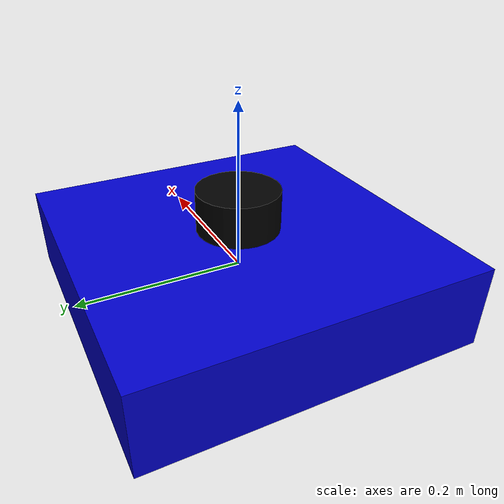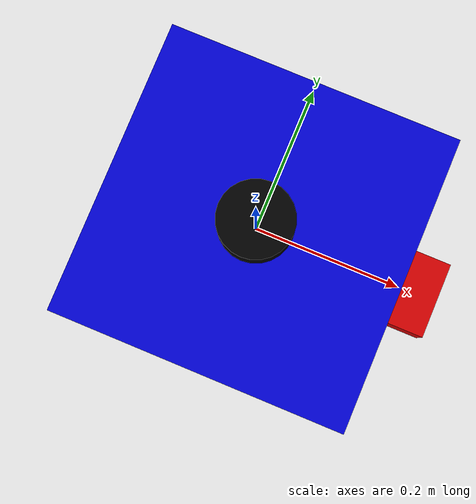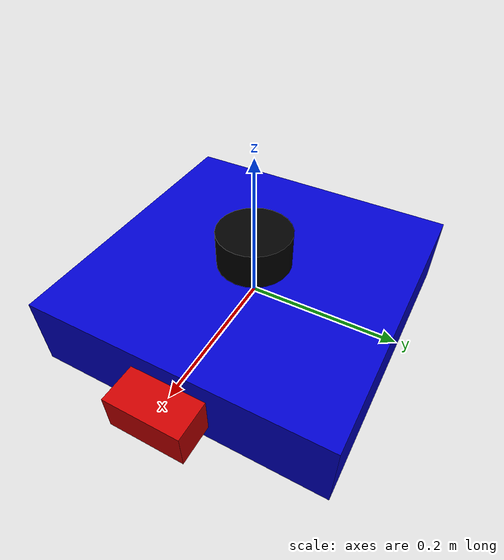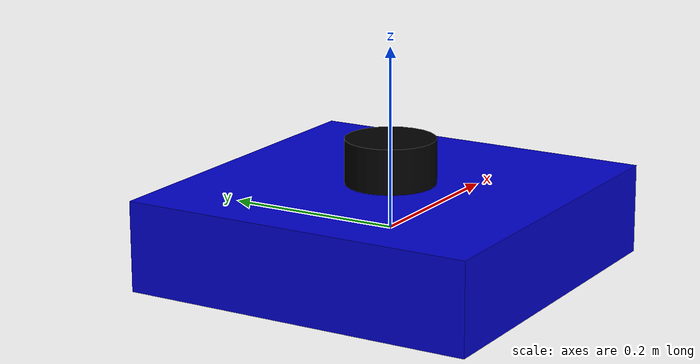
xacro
<?xml version="1.0"?>
<robot xmlns:xacro="http://www.ros.org/wiki/xacro" name="drone">

    <material name="blue">
        <color rgba="0 0 0.8 1"/>
    </material>
    <material name="red">
        <color rgba="0.8 0 0 1"/>
    </material>
    <material name="black">
        <color rgba="0 0 0 1"/>
    </material>

    <link name="base_link">
    </link>

    <joint name="chassis_joint" type="fixed">
        <parent link="base_link"/>
        <child link="chassis"/>
        <origin xyz="0 0 0"/>
    </joint>

    <link name="chassis">
        <visual>
            <origin xyz="0 0 0" rpy="0 0 0"/>
            <geometry>
                <box size="0.4 0.4 0.1"/> </geometry>
            <material name="blue"/>
        </visual>
        <collision>
            <origin xyz="0 0 0" rpy="0 0 0"/>
            <geometry>
                <box size="0.4 0.4 0.1"/>
            </geometry>
        </collision>
        <inertial>
            <origin xyz="0 0 0" rpy="0 0 0"/>
            <mass value="1.5"/> <inertia ixx="0.02" ixy="0.0" ixz="0.0" iyy="0.02" iyz="0.0" izz="0.04"/>
        </inertial>
    </link>

    <joint name="nose_joint" type="fixed">
        <parent link="chassis"/>
        <child link="nose_link"/>
        <origin xyz="0.2 0 0.0" rpy="0 0 0"/>
    </joint>

    <link name="nose_link">
        <visual>
            <origin xyz="0 0 0" rpy="0 0 0"/>
            <geometry>
                <box size="0.1 0.1 0.05"/>
            </geometry>
            <material name = "red"/>
        </visual>
    </link>

    <joint name="lidar_joint" type="fixed">
        <parent link="chassis"/>
        <child link="lidar_link"/>
        <origin xyz="0 0 0.075" rpy="0 0 0"/>
    </joint>

    <link name="lidar_link">
        <visual>
            <origin xyz="0 0 0" rpy="0 0 0"/>
            <geometry>
                <cylinder radius="0.05" length="0.05"/> </geometry>
            <material name="black"/>
        </visual>
        <collision>
            <origin xyz="0 0 0" rpy="0 0 0"/>
            <geometry>
                <cylinder radius="0.05" length="0.05"/>
            </geometry>
        </collision>
        <inertial>
            <origin xyz="0 0 0" rpy="0 0 0"/>
            <mass value="0.2"/> <inertia ixx="0.001" ixy="0.0" ixz="0.0" iyy="0.001" iyz="0.0" izz="0.001"/>
        </inertial>
    </link>

    <gazebo>
        <plugin filename="gz-sim-sensors-system" name ="gz::sim::systems::Sensors">
            <render_engine>ogre2</render_engine>
        </plugin>
    </gazebo>
    <gazebo reference="base_link">
        <gravity>false</gravity>
    </gazebo>

    <!-- PLUGIN DE GAZEBO: SENSOR LIDAR                 -->
    <gazebo reference="base_link">
        <sensor name="lidar" type="gpu_lidar">
            <pose>0 0 0.075 0 0 0</pose>
            <topic>/scan</topic>
            <gz_frame_id>base_link</gz_frame_id>
            <update_rate>10</update_rate> <!-- Lee datos a 10 Hz -->
            <ray>
                <scan>
                    <horizontal>
                        <samples>360</samples> <!-- 360 rayos (1 por grado) -->
                        <resolution>1.0</resolution>
                        <min_angle>-3.14159</min_angle> <!-- Desde -180 grados -->
                        <max_angle>3.14159</max_angle>  <!-- Hasta +180 grados -->
                    </horizontal>
                </scan>
                <range>
                    <min>0.15</min> <!-- Distancia mínima (15 cm) -->
                    <max>10.0</max> <!-- Distancia máxima (10 metros) -->
                    <resolution>0.01</resolution>
                </range>
                <noise>
                    <type>gaussian</type>
                    <mean>0.0</mean>
                    <stddev>0.01</stddev> <!-- Pequeño ruido para simular la imperfección del mundo real -->
                </noise>
            </ray>
            <always_on>true</always_on><!-- poner a false para no ver los rayos-->
            <visualize>false</visualize>
        </sensor>
    </gazebo>
    <!-- PLUGIN DE MOVIMIENTO PARA GAZEBO MODERNO (Jazzy / Harmonic) -->
    <gazebo>
        <!-- 1. El "Motor": Recibe el /cmd_vel y mueve la caja en 3D -->
        <plugin filename="libgz-sim-velocity-control-system.so" name="gz::sim::systems::VelocityControl">
            <topic>/cmd_vel</topic>
            <use_world_frame>false</use_world_frame>
        </plugin>
        <!-- 2. El "GPS": Publica la Odometría para saber dónde está el dron -->
        <plugin filename="libgz-sim-odometry-publisher-system.so" name="gz::sim::systems::OdometryPublisher">
            <odom_frame>odom</odom_frame>
            <robot_base_frame>base_link</robot_base_frame>
            <odom_publish_frequency>10</odom_publish_frequency>

            <odom_topic>/odom</odom_topic>
            <dimensions>3</dimensions>
        </plugin>

    </gazebo>

    </robot>
